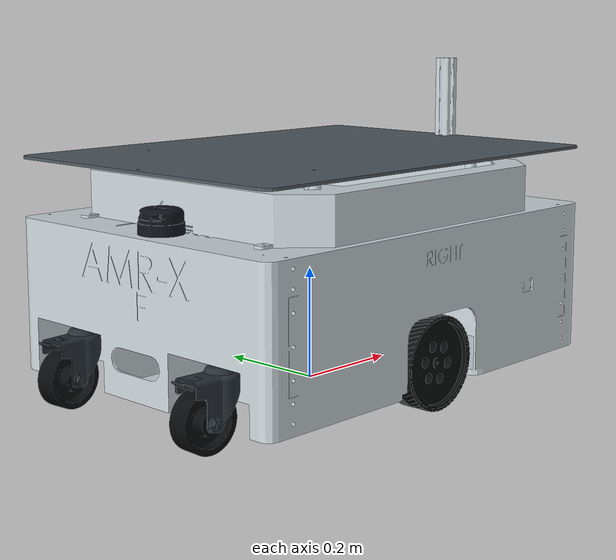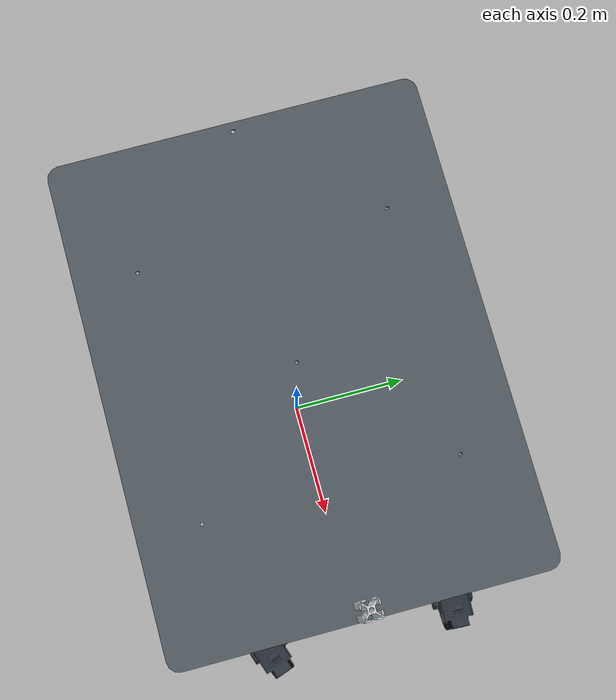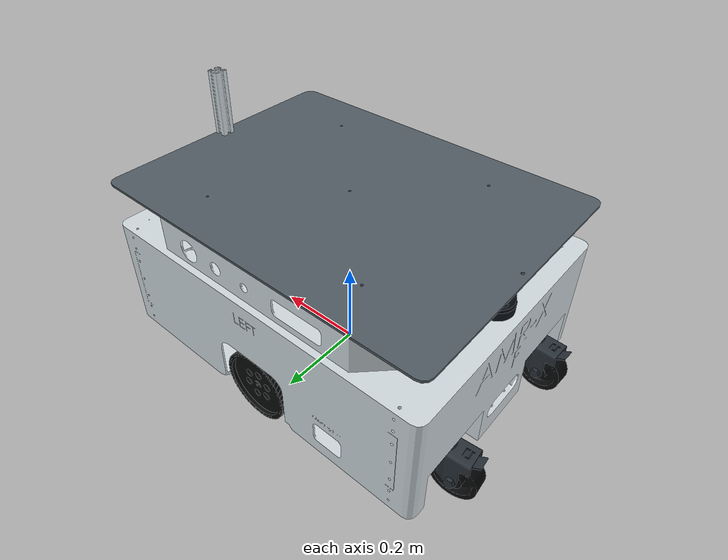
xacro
<?xml version="1.0"?>
<robot name="amr_x_real" xmlns:xacro="http://www.ros.org/wiki/xacro">

  <xacro:property name="wheel_radius"     value="0.080"/>   <!-- metres: measured from DR_Link/DL_Link.STL bounding box (was 0.060, wrong scale -> odom drift) -->
  <xacro:property name="wheel_separation" value="0.5787"/>  <!-- CAD joint centres: 2 x 0.28935 m -->
  <xacro:property name="base_to_axle_z"   value="0.3305"/>  <!-- CAD: base_link height above wheel axle (DR/DL joint z = -0.3305) -->

  <!-- LiDAR + IMU mount points on base_link (EDIT to real positions) -->
  <!-- Front CAD LiDAR puck centre is x=0.3447, y=-0.0044.  Place the
       simulated scan plane near the puck's optical top surface. -->
  <xacro:property name="lidar_xyz" value="0.3447 -0.0044 -0.068"/>
  <xacro:property name="imu_xyz"   value="0 0 0.0"/>    <!-- near chassis centre; adjust -->

  <xacro:include filename="$(find robot_description)/urdf/AMR-X_robot.urdf"/>

  <link name="base_footprint"/>
  <joint name="base_footprint_joint" type="fixed">
    <parent link="base_footprint"/>
    <child  link="base_link"/>
    <origin xyz="0 0 ${base_to_axle_z + wheel_radius}" rpy="0 0 0"/>
  </joint>

  <!-- ===================================================================
       3. Sensor frames mounted on base_link
       =================================================================== -->
  <link name="lidar_link"/>
  <joint name="lidar_joint" type="fixed">
    <parent link="base_link"/>
    <child  link="lidar_link"/>
    <origin xyz="${lidar_xyz}" rpy="0 0 0"/>
  </joint>

  <link name="imu_link"/>
  <joint name="imu_joint" type="fixed">
    <parent link="base_link"/>
    <child  link="imu_link"/>
    <origin xyz="${imu_xyz}" rpy="0 0 0"/>
  </joint>

  <!-- ===================================================================
       4. Gazebo Harmonic plugins
       =================================================================== -->
  <gazebo>
    <!-- Differential drive on the REAL wheels -->
    <plugin filename="gz-sim-diff-drive-system"
            name="gz::sim::systems::DiffDrive">
      <left_joint>DL_joint</left_joint>
      <right_joint>DR_joint</right_joint>
      <wheel_separation>${wheel_separation}</wheel_separation>
      <wheel_radius>${wheel_radius}</wheel_radius>
      <topic>cmd_vel</topic>
      <odom_topic>odom</odom_topic>
      <tf_topic>tf</tf_topic>
      <frame_id>odom</frame_id>
      <child_frame_id>base_footprint</child_frame_id>
      <odom_publish_frequency>50</odom_publish_frequency>
      <max_linear_velocity>2.0</max_linear_velocity>
      <min_linear_velocity>-2.0</min_linear_velocity>
      <max_angular_velocity>1.8</max_angular_velocity>
      <min_angular_velocity>-1.8</min_angular_velocity>
      <!-- Avoid an instantaneous wheel-speed step, which otherwise produces
           a large initial slip and immediately corrupts wheel odometry. -->
      <max_linear_acceleration>0.5</max_linear_acceleration>
      <min_linear_acceleration>-0.5</min_linear_acceleration>
      <max_angular_acceleration>1.5</max_angular_acceleration>
      <min_angular_acceleration>-1.5</min_angular_acceleration>
    </plugin>

    <plugin filename="gz-sim-joint-state-publisher-system"
            name="gz::sim::systems::JointStatePublisher">
      <topic>joint_states</topic>
    </plugin>

    <plugin filename="gz-sim-sensors-system"
            name="gz::sim::systems::Sensors">
      <render_engine>ogre2</render_engine>
    </plugin>
  </gazebo>

  <!-- ===================================================================
       5. LiDAR + IMU sensors (Harmonic)
       =================================================================== -->
  <gazebo reference="lidar_link">
    <sensor name="lidar" type="gpu_lidar">
      <topic>scan</topic>
      <gz_frame_id>lidar_link</gz_frame_id>
      <update_rate>10</update_rate>
      <always_on>true</always_on>
      <visualize>true</visualize>
      <lidar>
        <scan>
          <horizontal>
            <samples>360</samples>
            <resolution>1</resolution>
            <min_angle>-3.14159</min_angle>
            <max_angle>3.14159</max_angle>
          </horizontal>
        </scan>
        <range>
          <min>0.15</min>
          <max>12.0</max>
          <resolution>0.01</resolution>
        </range>
      </lidar>
    </sensor>
  </gazebo>

  <gazebo reference="imu_link">
    <sensor name="imu" type="imu">
      <topic>imu</topic>
      <gz_frame_id>imu_link</gz_frame_id>
      <update_rate>100</update_rate>
      <always_on>true</always_on>
    </sensor>
  </gazebo>

  <gazebo reference="FR_Caster_Wheel_Link"><mu1>0.1</mu1><mu2>0.2</mu2><fdir1>1 0 0</fdir1></gazebo>
  <gazebo reference="FL_Caster_Wheel_Link"><mu1>0.1</mu1><mu2>0.2</mu2><fdir1>1 0 0</fdir1></gazebo>
  <gazebo reference="BR_Caster_Wheel_Link"><mu1>0.1</mu1><mu2>0.2</mu2><fdir1>1 0 0</fdir1></gazebo>
  <gazebo reference="BL_Caster_Wheel_Link"><mu1>0.1</mu1><mu2>0.2</mu2><fdir1>1 0 0</fdir1></gazebo>

  <gazebo reference="DR_Link"><mu1>3.0</mu1><mu2>3.0</mu2></gazebo>
  <gazebo reference="DL_Link"><mu1>3.0</mu1><mu2>3.0</mu2></gazebo>

</robot>

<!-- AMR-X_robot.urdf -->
<robot
  name="AMR-X_robot">
  <!-- Product finishes shared by the existing CAD parts. These materials
       change appearance only; no geometry or physical properties are added. -->
  <material name="amrx_porcelain_white">
    <color rgba="0.82 0.86 0.88 1" />
  </material>
  <material name="amrx_brushed_silver">
    <color rgba="0.32 0.36 0.39 1" />
  </material>
  <material name="amrx_graphite_hardware">
    <color rgba="0.16 0.19 0.22 1" />
  </material>
  <material name="amrx_rubber_black">
    <color rgba="0.035 0.04 0.045 1" />
  </material>
  <material name="amrx_sensor_graphite">
    <color rgba="0.06 0.08 0.10 1" />
  </material>
  <link
    name="base_link">
    <inertial>
      <origin
        xyz="0.0013571 -0.00065205 -0.21112"
        rpy="0 0 0" />
      <mass
        value="22.435" />
      <inertia
        ixx="0.54135"
        ixy="-0.00028346"
        ixz="0.00024483"
        iyy="0.9733"
        iyz="-0.00016813"
        izz="1.4441" />
    </inertial>
    <visual name="body_finish">
      <origin
        xyz="0 0 0"
        rpy="0 0 0" />
      <geometry>
        <mesh
          filename="package://robot_description/meshes/base_body_visual.STL" />
      </geometry>
      <material name="amrx_porcelain_white" />
    </visual>
    <visual name="deck_finish">
      <origin xyz="0 0 0" rpy="0 0 0" />
      <geometry>
        <mesh filename="package://robot_description/meshes/base_deck_visual.STL" />
      </geometry>
      <material name="amrx_brushed_silver" />
    </visual>
    <visual name="cad_lidar_finish">
      <origin xyz="0 0 0" rpy="0 0 0" />
      <geometry>
        <mesh filename="package://robot_description/meshes/base_lidar_visual.STL" />
      </geometry>
      <material name="amrx_sensor_graphite" />
    </visual>
    <collision>
      <!-- Keep the detailed CAD mesh for rendering, but use a primitive for
           stable and inexpensive dynamic contact in Gazebo. -->
      <origin xyz="0 0 -0.185" rpy="0 0 0" />
      <geometry>
        <box size="0.8 0.6 0.37" />
      </geometry>
    </collision>
  </link>
  <link
    name="FR_Body_Caster_Link">
    <inertial>
      <origin
        xyz="0.020503 0.00806 -0.035146"
        rpy="0 0 0" />
      <mass
        value="0.071265" />
      <inertia
        ixx="4.4532E-05"
        ixy="-5.8177E-07"
        ixz="2.6946E-06"
        iyy="4.5994E-05"
        iyz="9.4124E-07"
        izz="5.3514E-05" />
    </inertial>
    <visual>
      <origin
        xyz="0 0 0"
        rpy="0 0 0" />
      <geometry>
        <mesh
          filename="package://robot_description/meshes/FR_Body_Caster_Link.STL" />
      </geometry>
      <material name="amrx_graphite_hardware" />
    </visual>
    <collision>
      <origin
        xyz="0 0 0"
        rpy="0 0 0" />
      <geometry>
        <mesh
          filename="package://robot_description/meshes/FR_Body_Caster_Link.STL" />
      </geometry>
    </collision>
  </link>
  <joint
    name="FR_Body_Caster_joint"
    type="continuous">
    <origin
      xyz="0.374 -0.17 -0.2825"
      rpy="0 0 0" />
    <parent
      link="base_link" />
    <child
      link="FR_Body_Caster_Link" />
    <axis
      xyz="0 0 1" />
    <dynamics damping="0.02" friction="0.0" />
  </joint>
  <link
    name="FR_Caster_Wheel_Link">
    <inertial>
      <origin
        xyz="-2.2204E-16 0.022287 -1.0408E-16"
        rpy="0 0 0" />
      <mass
        value="0.17762" />
      <inertia
        ixx="0.00014868"
        ixy="4.7434E-20"
        ixz="-3.6516E-21"
        iyy="0.00025768"
        iyz="-4.8044E-20"
        izz="0.00014868" />
    </inertial>
    <visual>
      <origin
        xyz="0 0 0"
        rpy="0 0 0" />
      <geometry>
        <mesh
          filename="package://robot_description/meshes/FR_Caster_Wheel_Link.STL" />
      </geometry>
      <material name="amrx_rubber_black" />
    </visual>
    <collision>
      <origin xyz="0 0 0" rpy="1.57079632679 0 0" />
      <geometry>
        <!-- Match the 50 mm CAD wheel so all four casters can carry load,
             swivel, and roll instead of hovering above the floor. -->
        <cylinder radius="0.05" length="0.044" />
      </geometry>
    </collision>
  </link>
  <joint
    name="FR_Caster_Wheel_joint"
    type="continuous">
    <origin
      xyz="0.038692 -0.0097884 -0.078"
      rpy="0 0 0.33605" />
    <parent
      link="FR_Body_Caster_Link" />
    <child
      link="FR_Caster_Wheel_Link" />
    <axis
      xyz="0 1 0" />
    <dynamics damping="0.01" friction="0.0" />
  </joint>
  <link
    name="FL_Body_Caster_Link">
    <inertial>
      <origin
        xyz="0.022029 -0.00022334 -0.035145"
        rpy="0 0 0" />
      <mass
        value="0.071265" />
      <inertia
        ixx="4.4333E-05"
        ixy="9.067E-08"
        ixz="2.8508E-06"
        iyy="4.6193E-05"
        iyz="-1.388E-07"
        izz="5.3514E-05" />
    </inertial>
    <visual>
      <origin
        xyz="0 0 0"
        rpy="0 0 0" />
      <geometry>
        <mesh
          filename="package://robot_description/meshes/FL_Body_Caster_Link.STL" />
      </geometry>
      <material name="amrx_graphite_hardware" />
    </visual>
    <collision>
      <origin
        xyz="0 0 0"
        rpy="0 0 0" />
      <geometry>
        <mesh
          filename="package://robot_description/meshes/FL_Body_Caster_Link.STL" />
      </geometry>
    </collision>
  </link>
  <joint
    name="FL_Body_Caster_joint"
    type="continuous">
    <origin
      xyz="0.374 0.17 -0.2825"
      rpy="0 0 0" />
    <parent
      link="base_link" />
    <child
      link="FL_Body_Caster_Link" />
    <axis
      xyz="0 0 1" />
    <dynamics damping="0.02" friction="0.0" />
  </joint>
  <link
    name="FL_Caster_Wheel_Link">
    <inertial>
      <origin
        xyz="-3.3307E-16 -0.021713 -1.9082E-17"
        rpy="0 0 0" />
      <mass
        value="0.17762" />
      <inertia
        ixx="0.00014868"
        ixy="1.9905E-20"
        ixz="-6.1252E-21"
        iyy="0.00025768"
        iyz="-1.813E-21"
        izz="0.00014868" />
    </inertial>
    <visual>
      <origin
        xyz="0 0 0"
        rpy="0 0 0" />
      <geometry>
        <mesh
          filename="package://robot_description/meshes/FL_Caster_Wheel_Link.STL" />
      </geometry>
      <material name="amrx_rubber_black" />
    </visual>
    <collision>
      <origin xyz="0 0 0" rpy="1.57079632679 0 0" />
      <geometry>
        <cylinder radius="0.05" length="0.044" />
      </geometry>
    </collision>
  </link>
  <joint
    name="FL_Caster_Wheel_joint"
    type="continuous">
    <origin
      xyz="0.03433 0.020355 -0.078"
      rpy="0 0 -0.048651" />
    <parent
      link="FL_Body_Caster_Link" />
    <child
      link="FL_Caster_Wheel_Link" />
    <axis
      xyz="0 1 0" />
    <dynamics damping="0.01" friction="0.0" />
  </joint>
  <link
    name="BR_Body_Caster_Link">
    <inertial>
      <origin
        xyz="-0.022029 0.00021001 -0.035145"
        rpy="0 0 0" />
      <mass
        value="0.071265" />
      <inertia
        ixx="4.4333E-05"
        ixy="8.9544E-08"
        ixz="-2.8509E-06"
        iyy="4.6193E-05"
        iyz="1.3707E-07"
        izz="5.3514E-05" />
    </inertial>
    <visual>
      <origin
        xyz="0 0 0"
        rpy="0 0 0" />
      <geometry>
        <mesh
          filename="package://robot_description/meshes/BR_Body_Caster_Link.STL" />
      </geometry>
      <material name="amrx_graphite_hardware" />
    </visual>
    <collision>
      <origin
        xyz="0 0 0"
        rpy="0 0 0" />
      <geometry>
        <mesh
          filename="package://robot_description/meshes/BR_Body_Caster_Link.STL" />
      </geometry>
    </collision>
  </link>
  <joint
    name="BR_Body_Caster_joint"
    type="continuous">
    <origin
      xyz="-0.374 -0.17 -0.2825"
      rpy="0 0 0" />
    <parent
      link="base_link" />
    <child
      link="BR_Body_Caster_Link" />
    <axis
      xyz="0 0 1" />
    <dynamics damping="0.02" friction="0.0" />
  </joint>
  <link
    name="BR_Caster_Wheel_Link">
    <inertial>
      <origin
        xyz="1.89084858881472E-16 0.0217134660091165 -2.42861286636753E-17"
        rpy="0 0 0" />
      <mass
        value="0.177618721015328" />
      <inertia
        ixx="0.000148679235470585"
        ixy="-6.64920863594626E-20"
        ixz="2.96449903404524E-20"
        iyy="0.000257680237598665"
        iyz="3.42357738424235E-20"
        izz="0.000148679235470585" />
    </inertial>
    <visual>
      <origin
        xyz="0 0 0"
        rpy="0 0 0" />
      <geometry>
        <mesh
          filename="package://robot_description/meshes/BR_Caster_Wheel_Link.STL" />
      </geometry>
      <material name="amrx_rubber_black" />
    </visual>
    <collision>
      <origin xyz="0 0 0" rpy="1.57079632679 0 0" />
      <geometry>
        <cylinder radius="0.05" length="0.044" />
      </geometry>
    </collision>
  </link>
  <joint
    name="BR_Caster_Wheel_joint"
    type="continuous">
    <origin
      xyz="-0.034318 -0.020375 -0.078"
      rpy="0 0 -0.048045" />
    <parent
      link="BR_Body_Caster_Link" />
    <child
      link="BR_Caster_Wheel_Link" />
    <axis
      xyz="0 1 0" />
    <dynamics damping="0.01" friction="0.0" />
  </joint>
  <link
    name="BL_Body_Caster_Link">
    <inertial>
      <origin
        xyz="-0.0218678430005275 -0.00266697882029615 -0.0351455045702213"
        rpy="0 0 0" />
      <mass
        value="0.0712645529054218" />
      <inertia
        ixx="4.43414537888446E-05"
        ixy="-1.54182596802165E-07"
        ixz="-2.8443723651872E-06"
        iyy="4.61842448469417E-05"
        iyz="-2.36228974681822E-07"
        izz="5.3514226990257E-05" />
    </inertial>
    <visual>
      <origin
        xyz="0 0 0"
        rpy="0 0 0" />
      <geometry>
        <mesh
          filename="package://robot_description/meshes/BL_Body_Caster_Link.STL" />
      </geometry>
      <material name="amrx_graphite_hardware" />
    </visual>
    <collision>
      <origin
        xyz="0 0 0"
        rpy="0 0 0" />
      <geometry>
        <mesh
          filename="package://robot_description/meshes/BL_Body_Caster_Link.STL" />
      </geometry>
    </collision>
  </link>
  <joint
    name="BL_Body_Caster_joint"
    type="continuous">
    <origin
      xyz="-0.374 0.17 -0.2825"
      rpy="0 0 0" />
    <parent
      link="base_link" />
    <child
      link="BL_Body_Caster_Link" />
    <axis
      xyz="0 0 1" />
    <dynamics damping="0.02" friction="0.0" />
  </joint>
  <link
    name="BL_Caster_Wheel_Link">
    <inertial>
      <origin
        xyz="3.78169717762944E-16 -0.0222865339908825 7.97972798949331E-17"
        rpy="0 0 0" />
      <mass
        value="0.177618721015329" />
      <inertia
        ixx="0.000148679235470586"
        ixy="-4.74338450462408E-20"
        ixz="1.76270303633453E-20"
        iyy="0.000257680237598666"
        iyz="6.12979291859808E-21"
        izz="0.000148679235470585" />
    </inertial>
    <visual>
      <origin
        xyz="0 0 0"
        rpy="0 0 0" />
      <geometry>
        <mesh
          filename="package://robot_description/meshes/BL_Caster_Wheel_Link.STL" />
      </geometry>
      <material name="amrx_rubber_black" />
    </visual>
    <collision>
      <origin xyz="0 0 0" rpy="1.57079632679 0 0" />
      <geometry>
        <cylinder radius="0.05" length="0.044" />
      </geometry>
    </collision>
  </link>
  <joint
    name="BL_Caster_Wheel_joint"
    type="continuous">
    <origin
      xyz="-0.035006 0.019169 -0.078"
      rpy="0 0 0.082847" />
    <parent
      link="BL_Body_Caster_Link" />
    <child
      link="BL_Caster_Wheel_Link" />
    <axis
      xyz="0 1 0" />
    <dynamics damping="0.01" friction="0.0" />
  </joint>
  <link
    name="DR_Link">
    <inertial>
      <origin
        xyz="-1.58519700310666E-07 0.0188945749350604 -1.83852059257306E-07"
        rpy="0 0 0" />
      <mass
        value="0.694359970313603" />
      <inertia
        ixx="0.00133736761007223"
        ixy="4.06292710783286E-09"
        ixz="7.66114678476427E-10"
        iyy="0.00249169026727874"
        iyz="4.70958429396639E-09"
        izz="0.00133736783768793" />
    </inertial>
    <visual>
      <origin
        xyz="0 0 0"
        rpy="0 0 0" />
      <geometry>
        <mesh
          filename="package://robot_description/meshes/DR_Link.STL" />
      </geometry>
      <material name="amrx_rubber_black" />
    </visual>
    <collision>
      <origin xyz="0 0 0" rpy="1.57079632679 0 0" />
      <geometry>
        <cylinder radius="0.08" length="0.05" />
      </geometry>
    </collision>
  </link>
  <joint
    name="DR_joint"
    type="continuous">
    <origin
      xyz="0 -0.28935 -0.3305"
      rpy="0 0 0" />
    <parent
      link="base_link" />
    <child
      link="DR_Link" />
    <axis
      xyz="0 1 0" />
    <dynamics damping="0.05" friction="0.0" />
  </joint>
  <link
    name="DL_Link">
    <inertial>
      <origin
        xyz="-2.26846661788294E-07 -0.0188945749350604 8.64330206226671E-08"
        rpy="0 0 0" />
      <mass
        value="0.694359970313607" />
      <inertia
        ixx="0.00133736830215005"
        ixy="-5.81293010220082E-09"
        ixz="-5.15255062893285E-10"
        iyy="0.00249169026727875"
        iyz="2.21300802855076E-09"
        izz="0.00133736714561013" />
    </inertial>
    <visual>
      <origin
        xyz="0 0 0"
        rpy="0 0 0" />
      <geometry>
        <mesh
          filename="package://robot_description/meshes/DL_Link.STL" />
      </geometry>
      <material name="amrx_rubber_black" />
    </visual>
    <collision>
      <origin xyz="0 0 0" rpy="1.57079632679 0 0" />
      <geometry>
        <cylinder radius="0.08" length="0.05" />
      </geometry>
    </collision>
  </link>
  <joint
    name="DL_joint"
    type="continuous">
    <origin
      xyz="0 0.28935 -0.3305"
      rpy="0 0 0" />
    <parent
      link="base_link" />
    <child
      link="DL_Link" />
    <axis
      xyz="0 1 0" />
    <dynamics damping="0.05" friction="0.0" />
  </joint>
</robot>
